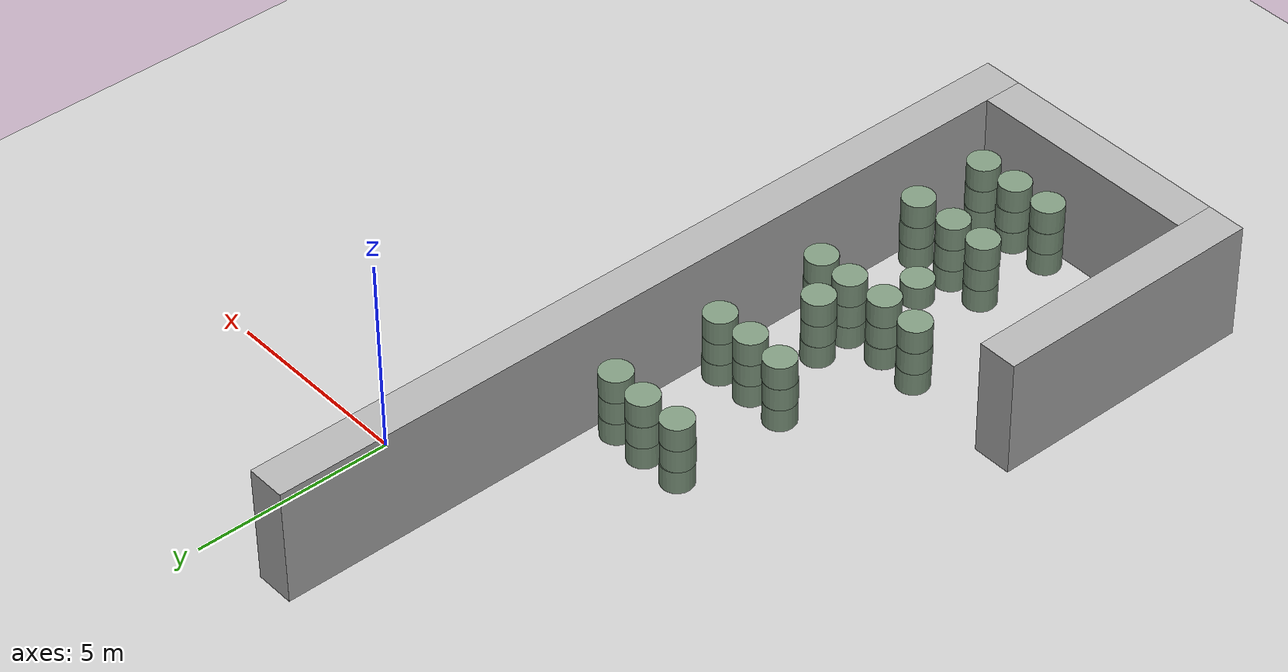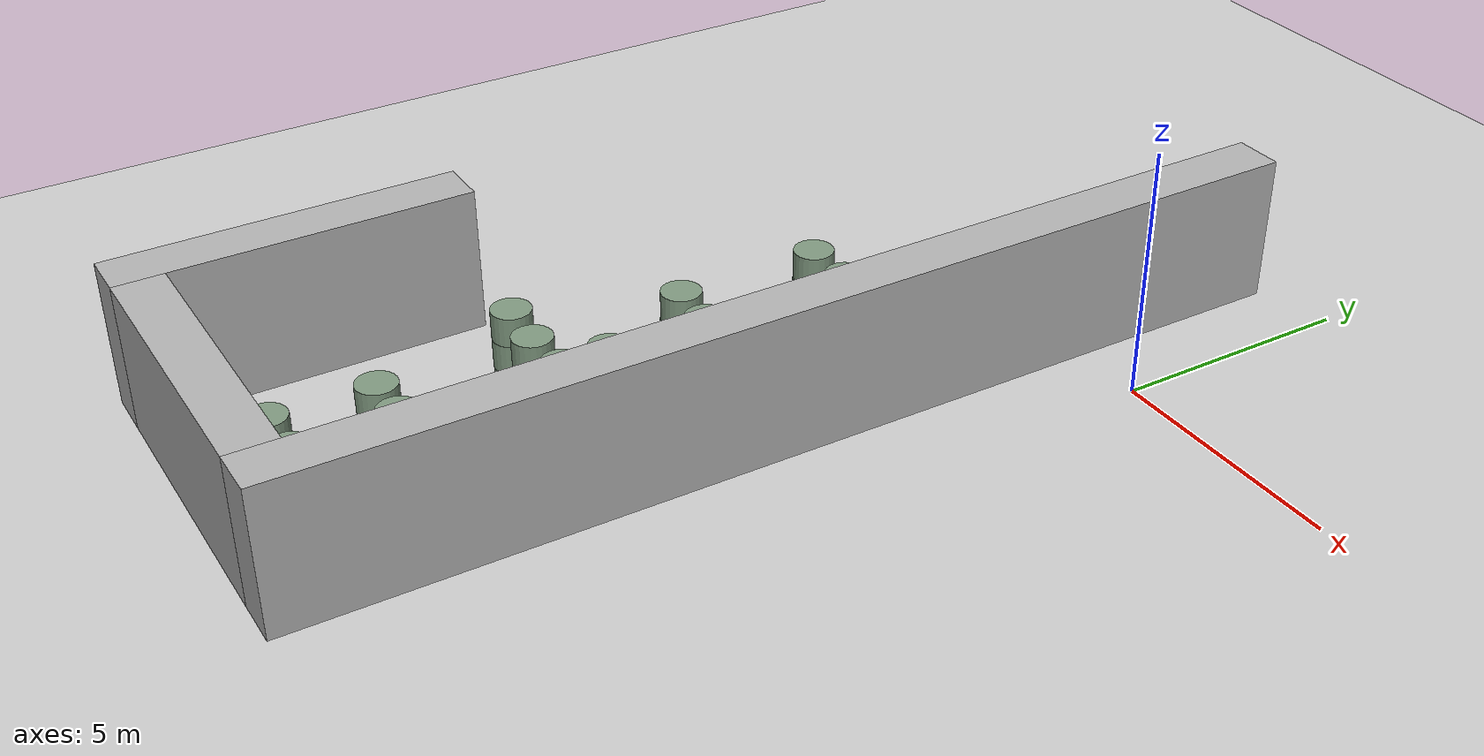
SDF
<sdf version="1.6">
 <world name="default">
  <include><uri>model://ground_plane</uri></include>
  <model name="wall_2">
   <pose>-9.0 -13.0 1.5 0 -0 0</pose>
   <static>True</static>
   <link name="link">
    <inertial>
     <mass>100</mass>
     <inertia>
      <ixx>0.166667</ixx>
      <ixy>0</ixy>
      <ixz>0</ixz>
      <iyy>0.166667</iyy>
      <iyz>0</iyz>
      <izz>0.166667</izz>
     </inertia>
    </inertial>
    <collision name="collision"><geometry><box><size>1.0 7.0 3.0</size></box></geometry></collision>
    <visual name="visual">
     <geometry><box><size>1.0 7.0 3.0</size></box></geometry>
     <material><ambient>0.7 0.7 0.7 1</ambient><diffuse>0.7 0.7 0.7 1</diffuse></material>
    </visual>
   </link>
  </model>
  <model name="wall_4">
   <pose>-2.0 -6.0 1.5 0 -0 0</pose>
   <static>True</static>
   <link name="link">
    <inertial>
     <mass>100</mass>
     <inertia>
      <ixx>0.166667</ixx>
      <ixy>0</ixy>
      <ixz>0</ixz>
      <iyy>0.166667</iyy>
      <iyz>0</iyz>
      <izz>0.166667</izz>
     </inertia>
    </inertial>
    <collision name="collision"><geometry><box><size>1.0 21.0 3.0</size></box></geometry></collision>
    <visual name="visual">
     <geometry><box><size>1.0 21.0 3.0</size></box></geometry>
     <material><ambient>0.7 0.7 0.7 1</ambient><diffuse>0.7 0.7 0.7 1</diffuse></material>
    </visual>
   </link>
  </model>
  <model name="wall_6">
   <pose>-5.5 -16.0 1.5 0 -0 0</pose>
   <static>True</static>
   <link name="link">
    <inertial>
     <mass>100</mass>
     <inertia>
      <ixx>0.166667</ixx>
      <ixy>0</ixy>
      <ixz>0</ixz>
      <iyy>0.166667</iyy>
      <iyz>0</iyz>
      <izz>0.166667</izz>
     </inertia>
    </inertial>
    <collision name="collision"><geometry><box><size>6.0 1.0 3.0</size></box></geometry></collision>
    <visual name="visual">
     <geometry><box><size>6.0 1.0 3.0</size></box></geometry>
     <material><ambient>0.7 0.7 0.7 1</ambient><diffuse>0.7 0.7 0.7 1</diffuse></material>
    </visual>
   </link>
  </model>
  <model name="unit_cylinder_47">
   <pose>-6.04018468574 -9.96377585734 0.3 0 -0 0</pose>
   <static>True</static>
   <link name="link">
    <inertial>
     <mass>100</mass>
     <inertia><ixx>0.145833</ixx><ixy>0</ixy><ixz>0</ixz><iyy>0.145833</iyy><iyz>0</iyz><izz>0.125</izz></inertia>
    </inertial>
    <collision name="collision">
     <geometry><cylinder><radius>0.4</radius><length>0.6</length></cylinder></geometry>
     <max_contacts>100</max_contacts>
    </collision>
    <visual name="visual">
     <geometry><cylinder><radius>0.4</radius><length>0.6</length></cylinder></geometry>
     <material><ambient>0.5 0.6 0.5 1</ambient><diffuse>0.5 0.6 0.5 1</diffuse></material>
    </visual>
   </link>
  </model>
  <model name="unit_cylinder_48">
   <pose>-6.05885597853 -9.96286618631 0.9 0 -0 0</pose>
   <static>True</static>
   <link name="link">
    <inertial>
     <mass>100</mass>
     <inertia><ixx>0.145833</ixx><ixy>0</ixy><ixz>0</ixz><iyy>0.145833</iyy><iyz>0</iyz><izz>0.125</izz></inertia>
    </inertial>
    <collision name="collision">
     <geometry><cylinder><radius>0.4</radius><length>0.6</length></cylinder></geometry>
     <max_contacts>100</max_contacts>
    </collision>
    <visual name="visual">
     <geometry><cylinder><radius>0.4</radius><length>0.6</length></cylinder></geometry>
     <material><ambient>0.5 0.6 0.5 1</ambient><diffuse>0.5 0.6 0.5 1</diffuse></material>
    </visual>
   </link>
  </model>
  <model name="unit_cylinder_49">
   <pose>-6.04866625079 -9.96528017133 1.5 0 -0 0</pose>
   <static>True</static>
   <link name="link">
    <inertial>
     <mass>100</mass>
     <inertia><ixx>0.145833</ixx><ixy>0</ixy><ixz>0</ixz><iyy>0.145833</iyy><iyz>0</iyz><izz>0.125</izz></inertia>
    </inertial>
    <collision name="collision">
     <geometry><cylinder><radius>0.4</radius><length>0.6</length></cylinder></geometry>
     <max_contacts>100</max_contacts>
    </collision>
    <visual name="visual">
     <geometry><cylinder><radius>0.4</radius><length>0.6</length></cylinder></geometry>
     <material><ambient>0.5 0.6 0.5 1</ambient><diffuse>0.5 0.6 0.5 1</diffuse></material>
    </visual>
   </link>
  </model>
  <model name="unit_cylinder_50">
   <pose>-5.02093100151 -15.0310494256 0.3 0 -0 0</pose>
   <static>True</static>
   <link name="link">
    <inertial>
     <mass>100</mass>
     <inertia><ixx>0.145833</ixx><ixy>0</ixy><ixz>0</ixz><iyy>0.145833</iyy><iyz>0</iyz><izz>0.125</izz></inertia>
    </inertial>
    <collision name="collision">
     <geometry><cylinder><radius>0.4</radius><length>0.6</length></cylinder></geometry>
     <max_contacts>100</max_contacts>
    </collision>
    <visual name="visual">
     <geometry><cylinder><radius>0.4</radius><length>0.6</length></cylinder></geometry>
     <material><ambient>0.5 0.6 0.5 1</ambient><diffuse>0.5 0.6 0.5 1</diffuse></material>
    </visual>
   </link>
  </model>
  <model name="unit_cylinder_51">
   <pose>-5.02213252741 -15.02975267 0.9 0 -0 0</pose>
   <static>True</static>
   <link name="link">
    <inertial>
     <mass>100</mass>
     <inertia><ixx>0.145833</ixx><ixy>0</ixy><ixz>0</ixz><iyy>0.145833</iyy><iyz>0</iyz><izz>0.125</izz></inertia>
    </inertial>
    <collision name="collision">
     <geometry><cylinder><radius>0.4</radius><length>0.6</length></cylinder></geometry>
     <max_contacts>100</max_contacts>
    </collision>
    <visual name="visual">
     <geometry><cylinder><radius>0.4</radius><length>0.6</length></cylinder></geometry>
     <material><ambient>0.5 0.6 0.5 1</ambient><diffuse>0.5 0.6 0.5 1</diffuse></material>
    </visual>
   </link>
  </model>
  <model name="unit_cylinder_52">
   <pose>-5.02042335464 -15.0371302083 1.5 0 -0 0</pose>
   <static>True</static>
   <link name="link">
    <inertial>
     <mass>100</mass>
     <inertia><ixx>0.145833</ixx><ixy>0</ixy><ixz>0</ixz><iyy>0.145833</iyy><iyz>0</iyz><izz>0.125</izz></inertia>
    </inertial>
    <collision name="collision">
     <geometry><cylinder><radius>0.4</radius><length>0.6</length></cylinder></geometry>
     <max_contacts>100</max_contacts>
    </collision>
    <visual name="visual">
     <geometry><cylinder><radius>0.4</radius><length>0.6</length></cylinder></geometry>
     <material><ambient>0.5 0.6 0.5 1</ambient><diffuse>0.5 0.6 0.5 1</diffuse></material>
    </visual>
   </link>
  </model>
  <model name="unit_cylinder_53">
   <pose>-4.97964766895 -13.035757856 0.3 0 -0 0</pose>
   <static>True</static>
   <link name="link">
    <inertial>
     <mass>100</mass>
     <inertia><ixx>0.145833</ixx><ixy>0</ixy><ixz>0</ixz><iyy>0.145833</iyy><iyz>0</iyz><izz>0.125</izz></inertia>
    </inertial>
    <collision name="collision">
     <geometry><cylinder><radius>0.4</radius><length>0.6</length></cylinder></geometry>
     <max_contacts>100</max_contacts>
    </collision>
    <visual name="visual">
     <geometry><cylinder><radius>0.4</radius><length>0.6</length></cylinder></geometry>
     <material><ambient>0.5 0.6 0.5 1</ambient><diffuse>0.5 0.6 0.5 1</diffuse></material>
    </visual>
   </link>
  </model>
  <model name="unit_cylinder_54">
   <pose>-4.97987729188 -13.0392586151 0.9 0 -0 0</pose>
   <static>True</static>
   <link name="link">
    <inertial>
     <mass>100</mass>
     <inertia><ixx>0.145833</ixx><ixy>0</ixy><ixz>0</ixz><iyy>0.145833</iyy><iyz>0</iyz><izz>0.125</izz></inertia>
    </inertial>
    <collision name="collision">
     <geometry><cylinder><radius>0.4</radius><length>0.6</length></cylinder></geometry>
     <max_contacts>100</max_contacts>
    </collision>
    <visual name="visual">
     <geometry><cylinder><radius>0.4</radius><length>0.6</length></cylinder></geometry>
     <material><ambient>0.5 0.6 0.5 1</ambient><diffuse>0.5 0.6 0.5 1</diffuse></material>
    </visual>
   </link>
  </model>
  <model name="unit_cylinder_55">
   <pose>-4.98933477123 -13.0417472599 1.5 0 -0 0</pose>
   <static>True</static>
   <link name="link">
    <inertial>
     <mass>100</mass>
     <inertia><ixx>0.145833</ixx><ixy>0</ixy><ixz>0</ixz><iyy>0.145833</iyy><iyz>0</iyz><izz>0.125</izz></inertia>
    </inertial>
    <collision name="collision">
     <geometry><cylinder><radius>0.4</radius><length>0.6</length></cylinder></geometry>
     <max_contacts>100</max_contacts>
    </collision>
    <visual name="visual">
     <geometry><cylinder><radius>0.4</radius><length>0.6</length></cylinder></geometry>
     <material><ambient>0.5 0.6 0.5 1</ambient><diffuse>0.5 0.6 0.5 1</diffuse></material>
    </visual>
   </link>
  </model>
  <model name="unit_cylinder_56">
   <pose>-4.97825052318 -10.0343738144 0.3 0 -0 0</pose>
   <static>True</static>
   <link name="link">
    <inertial>
     <mass>100</mass>
     <inertia><ixx>0.145833</ixx><ixy>0</ixy><ixz>0</ixz><iyy>0.145833</iyy><iyz>0</iyz><izz>0.125</izz></inertia>
    </inertial>
    <collision name="collision">
     <geometry><cylinder><radius>0.4</radius><length>0.6</length></cylinder></geometry>
     <max_contacts>100</max_contacts>
    </collision>
    <visual name="visual">
     <geometry><cylinder><radius>0.4</radius><length>0.6</length></cylinder></geometry>
     <material><ambient>0.5 0.6 0.5 1</ambient><diffuse>0.5 0.6 0.5 1</diffuse></material>
    </visual>
   </link>
  </model>
  <model name="unit_cylinder_57">
   <pose>-4.9749337582 -10.0489355561 0.9 0 -0 0</pose>
   <static>True</static>
   <link name="link">
    <inertial>
     <mass>100</mass>
     <inertia><ixx>0.145833</ixx><ixy>0</ixy><ixz>0</ixz><iyy>0.145833</iyy><iyz>0</iyz><izz>0.125</izz></inertia>
    </inertial>
    <collision name="collision">
     <geometry><cylinder><radius>0.4</radius><length>0.6</length></cylinder></geometry>
     <max_contacts>100</max_contacts>
    </collision>
    <visual name="visual">
     <geometry><cylinder><radius>0.4</radius><length>0.6</length></cylinder></geometry>
     <material><ambient>0.5 0.6 0.5 1</ambient><diffuse>0.5 0.6 0.5 1</diffuse></material>
    </visual>
   </link>
  </model>
  <model name="unit_cylinder_58">
   <pose>-4.98019111596 -10.0449038137 1.5 0 -0 0</pose>
   <static>True</static>
   <link name="link">
    <inertial>
     <mass>100</mass>
     <inertia><ixx>0.145833</ixx><ixy>0</ixy><ixz>0</ixz><iyy>0.145833</iyy><iyz>0</iyz><izz>0.125</izz></inertia>
    </inertial>
    <collision name="collision">
     <geometry><cylinder><radius>0.4</radius><length>0.6</length></cylinder></geometry>
     <max_contacts>100</max_contacts>
    </collision>
    <visual name="visual">
     <geometry><cylinder><radius>0.4</radius><length>0.6</length></cylinder></geometry>
     <material><ambient>0.5 0.6 0.5 1</ambient><diffuse>0.5 0.6 0.5 1</diffuse></material>
    </visual>
   </link>
  </model>
  <model name="unit_cylinder_59">
   <pose>-4.99897613698 -6.96157563519 0.3 0 -0 0</pose>
   <static>True</static>
   <link name="link">
    <inertial>
     <mass>100</mass>
     <inertia><ixx>0.145833</ixx><ixy>0</ixy><ixz>0</ixz><iyy>0.145833</iyy><iyz>0</iyz><izz>0.125</izz></inertia>
    </inertial>
    <collision name="collision">
     <geometry><cylinder><radius>0.4</radius><length>0.6</length></cylinder></geometry>
     <max_contacts>100</max_contacts>
    </collision>
    <visual name="visual">
     <geometry><cylinder><radius>0.4</radius><length>0.6</length></cylinder></geometry>
     <material><ambient>0.5 0.6 0.5 1</ambient><diffuse>0.5 0.6 0.5 1</diffuse></material>
    </visual>
   </link>
  </model>
  <model name="unit_cylinder_60">
   <pose>-5.00235431533 -6.96569296985 0.9 0 -0 0</pose>
   <static>True</static>
   <link name="link">
    <inertial>
     <mass>100</mass>
     <inertia><ixx>0.145833</ixx><ixy>0</ixy><ixz>0</ixz><iyy>0.145833</iyy><iyz>0</iyz><izz>0.125</izz></inertia>
    </inertial>
    <collision name="collision">
     <geometry><cylinder><radius>0.4</radius><length>0.6</length></cylinder></geometry>
     <max_contacts>100</max_contacts>
    </collision>
    <visual name="visual">
     <geometry><cylinder><radius>0.4</radius><length>0.6</length></cylinder></geometry>
     <material><ambient>0.5 0.6 0.5 1</ambient><diffuse>0.5 0.6 0.5 1</diffuse></material>
    </visual>
   </link>
  </model>
  <model name="unit_cylinder_61">
   <pose>-4.99132569543 -6.95472030622 1.5 0 -0 0</pose>
   <static>True</static>
   <link name="link">
    <inertial>
     <mass>100</mass>
     <inertia><ixx>0.145833</ixx><ixy>0</ixy><ixz>0</ixz><iyy>0.145833</iyy><iyz>0</iyz><izz>0.125</izz></inertia>
    </inertial>
    <collision name="collision">
     <geometry><cylinder><radius>0.4</radius><length>0.6</length></cylinder></geometry>
     <max_contacts>100</max_contacts>
    </collision>
    <visual name="visual">
     <geometry><cylinder><radius>0.4</radius><length>0.6</length></cylinder></geometry>
     <material><ambient>0.5 0.6 0.5 1</ambient><diffuse>0.5 0.6 0.5 1</diffuse></material>
    </visual>
   </link>
  </model>
  <model name="unit_cylinder_62">
   <pose>-5.02978008958 -3.98355117172 0.3 0 -0 0</pose>
   <static>True</static>
   <link name="link">
    <inertial>
     <mass>100</mass>
     <inertia><ixx>0.145833</ixx><ixy>0</ixy><ixz>0</ixz><iyy>0.145833</iyy><iyz>0</iyz><izz>0.125</izz></inertia>
    </inertial>
    <collision name="collision">
     <geometry><cylinder><radius>0.4</radius><length>0.6</length></cylinder></geometry>
     <max_contacts>100</max_contacts>
    </collision>
    <visual name="visual">
     <geometry><cylinder><radius>0.4</radius><length>0.6</length></cylinder></geometry>
     <material><ambient>0.5 0.6 0.5 1</ambient><diffuse>0.5 0.6 0.5 1</diffuse></material>
    </visual>
   </link>
  </model>
  <model name="unit_cylinder_63">
   <pose>-5.03525330247 -3.99738400435 0.9 0 -0 0</pose>
   <static>True</static>
   <link name="link">
    <inertial>
     <mass>100</mass>
     <inertia><ixx>0.145833</ixx><ixy>0</ixy><ixz>0</ixz><iyy>0.145833</iyy><iyz>0</iyz><izz>0.125</izz></inertia>
    </inertial>
    <collision name="collision">
     <geometry><cylinder><radius>0.4</radius><length>0.6</length></cylinder></geometry>
     <max_contacts>100</max_contacts>
    </collision>
    <visual name="visual">
     <geometry><cylinder><radius>0.4</radius><length>0.6</length></cylinder></geometry>
     <material><ambient>0.5 0.6 0.5 1</ambient><diffuse>0.5 0.6 0.5 1</diffuse></material>
    </visual>
   </link>
  </model>
  <model name="unit_cylinder_64">
   <pose>-5.02837142492 -3.99262679112 1.5 0 -0 0</pose>
   <static>True</static>
   <link name="link">
    <inertial>
     <mass>100</mass>
     <inertia><ixx>0.145833</ixx><ixy>0</ixy><ixz>0</ixz><iyy>0.145833</iyy><iyz>0</iyz><izz>0.125</izz></inertia>
    </inertial>
    <collision name="collision">
     <geometry><cylinder><radius>0.4</radius><length>0.6</length></cylinder></geometry>
     <max_contacts>100</max_contacts>
    </collision>
    <visual name="visual">
     <geometry><cylinder><radius>0.4</radius><length>0.6</length></cylinder></geometry>
     <material><ambient>0.5 0.6 0.5 1</ambient><diffuse>0.5 0.6 0.5 1</diffuse></material>
    </visual>
   </link>
  </model>
  <model name="unit_cylinder_92">
   <pose>-3.98473463308 -15.0203537264 0.3 0 -0 0</pose>
   <static>True</static>
   <link name="link">
    <inertial>
     <mass>100</mass>
     <inertia><ixx>0.145833</ixx><ixy>0</ixy><ixz>0</ixz><iyy>0.145833</iyy><iyz>0</iyz><izz>0.125</izz></inertia>
    </inertial>
    <collision name="collision">
     <geometry><cylinder><radius>0.4</radius><length>0.6</length></cylinder></geometry>
     <max_contacts>100</max_contacts>
    </collision>
    <visual name="visual">
     <geometry><cylinder><radius>0.4</radius><length>0.6</length></cylinder></geometry>
     <material><ambient>0.5 0.6 0.5 1</ambient><diffuse>0.5 0.6 0.5 1</diffuse></material>
    </visual>
   </link>
  </model>
  <model name="unit_cylinder_93">
   <pose>-3.96873581978 -15.0115278581 0.9 0 -0 0</pose>
   <static>True</static>
   <link name="link">
    <inertial>
     <mass>100</mass>
     <inertia><ixx>0.145833</ixx><ixy>0</ixy><ixz>0</ixz><iyy>0.145833</iyy><iyz>0</iyz><izz>0.125</izz></inertia>
    </inertial>
    <collision name="collision">
     <geometry><cylinder><radius>0.4</radius><length>0.6</length></cylinder></geometry>
     <max_contacts>100</max_contacts>
    </collision>
    <visual name="visual">
     <geometry><cylinder><radius>0.4</radius><length>0.6</length></cylinder></geometry>
     <material><ambient>0.5 0.6 0.5 1</ambient><diffuse>0.5 0.6 0.5 1</diffuse></material>
    </visual>
   </link>
  </model>
  <model name="unit_cylinder_94">
   <pose>-3.9824042208 -15.0200942727 1.5 0 -0 0</pose>
   <static>True</static>
   <link name="link">
    <inertial>
     <mass>100</mass>
     <inertia><ixx>0.145833</ixx><ixy>0</ixy><ixz>0</ixz><iyy>0.145833</iyy><iyz>0</iyz><izz>0.125</izz></inertia>
    </inertial>
    <collision name="collision">
     <geometry><cylinder><radius>0.4</radius><length>0.6</length></cylinder></geometry>
     <max_contacts>100</max_contacts>
    </collision>
    <visual name="visual">
     <geometry><cylinder><radius>0.4</radius><length>0.6</length></cylinder></geometry>
     <material><ambient>0.5 0.6 0.5 1</ambient><diffuse>0.5 0.6 0.5 1</diffuse></material>
    </visual>
   </link>
  </model>
  <model name="unit_cylinder_95">
   <pose>-4.03329316208 -13.0267179775 0.3 0 -0 0</pose>
   <static>True</static>
   <link name="link">
    <inertial>
     <mass>100</mass>
     <inertia><ixx>0.145833</ixx><ixy>0</ixy><ixz>0</ixz><iyy>0.145833</iyy><iyz>0</iyz><izz>0.125</izz></inertia>
    </inertial>
    <collision name="collision">
     <geometry><cylinder><radius>0.4</radius><length>0.6</length></cylinder></geometry>
     <max_contacts>100</max_contacts>
    </collision>
    <visual name="visual">
     <geometry><cylinder><radius>0.4</radius><length>0.6</length></cylinder></geometry>
     <material><ambient>0.5 0.6 0.5 1</ambient><diffuse>0.5 0.6 0.5 1</diffuse></material>
    </visual>
   </link>
  </model>
  <model name="unit_cylinder_96">
   <pose>-4.04989792798 -13.0279202242 0.9 0 -0 0</pose>
   <static>True</static>
   <link name="link">
    <inertial>
     <mass>100</mass>
     <inertia><ixx>0.145833</ixx><ixy>0</ixy><ixz>0</ixz><iyy>0.145833</iyy><iyz>0</iyz><izz>0.125</izz></inertia>
    </inertial>
    <collision name="collision">
     <geometry><cylinder><radius>0.4</radius><length>0.6</length></cylinder></geometry>
     <max_contacts>100</max_contacts>
    </collision>
    <visual name="visual">
     <geometry><cylinder><radius>0.4</radius><length>0.6</length></cylinder></geometry>
     <material><ambient>0.5 0.6 0.5 1</ambient><diffuse>0.5 0.6 0.5 1</diffuse></material>
    </visual>
   </link>
  </model>
  <model name="unit_cylinder_97">
   <pose>-4.04571168082 -13.0320283141 1.5 0 -0 0</pose>
   <static>True</static>
   <link name="link">
    <inertial>
     <mass>100</mass>
     <inertia><ixx>0.145833</ixx><ixy>0</ixy><ixz>0</ixz><iyy>0.145833</iyy><iyz>0</iyz><izz>0.125</izz></inertia>
    </inertial>
    <collision name="collision">
     <geometry><cylinder><radius>0.4</radius><length>0.6</length></cylinder></geometry>
     <max_contacts>100</max_contacts>
    </collision>
    <visual name="visual">
     <geometry><cylinder><radius>0.4</radius><length>0.6</length></cylinder></geometry>
     <material><ambient>0.5 0.6 0.5 1</ambient><diffuse>0.5 0.6 0.5 1</diffuse></material>
    </visual>
   </link>
  </model>
  <model name="unit_cylinder_98">
   <pose>-3.98046642279 -12.0398564666 0.3 0 -0 0</pose>
   <static>True</static>
   <link name="link">
    <inertial>
     <mass>100</mass>
     <inertia><ixx>0.145833</ixx><ixy>0</ixy><ixz>0</ixz><iyy>0.145833</iyy><iyz>0</iyz><izz>0.125</izz></inertia>
    </inertial>
    <collision name="collision">
     <geometry><cylinder><radius>0.4</radius><length>0.6</length></cylinder></geometry>
     <max_contacts>100</max_contacts>
    </collision>
    <visual name="visual">
     <geometry><cylinder><radius>0.4</radius><length>0.6</length></cylinder></geometry>
     <material><ambient>0.5 0.6 0.5 1</ambient><diffuse>0.5 0.6 0.5 1</diffuse></material>
    </visual>
   </link>
  </model>
  <model name="unit_cylinder_99">
   <pose>-3.94529130245 -9.95554350675 0.3 0 -0 0</pose>
   <static>True</static>
   <link name="link">
    <inertial>
     <mass>100</mass>
     <inertia><ixx>0.145833</ixx><ixy>0</ixy><ixz>0</ixz><iyy>0.145833</iyy><iyz>0</iyz><izz>0.125</izz></inertia>
    </inertial>
    <collision name="collision">
     <geometry><cylinder><radius>0.4</radius><length>0.6</length></cylinder></geometry>
     <max_contacts>100</max_contacts>
    </collision>
    <visual name="visual">
     <geometry><cylinder><radius>0.4</radius><length>0.6</length></cylinder></geometry>
     <material><ambient>0.5 0.6 0.5 1</ambient><diffuse>0.5 0.6 0.5 1</diffuse></material>
    </visual>
   </link>
  </model>
  <model name="unit_cylinder_100">
   <pose>-3.95213730991 -9.95827642433 0.9 0 -0 0</pose>
   <static>True</static>
   <link name="link">
    <inertial>
     <mass>100</mass>
     <inertia><ixx>0.145833</ixx><ixy>0</ixy><ixz>0</ixz><iyy>0.145833</iyy><iyz>0</iyz><izz>0.125</izz></inertia>
    </inertial>
    <collision name="collision">
     <geometry><cylinder><radius>0.4</radius><length>0.6</length></cylinder></geometry>
     <max_contacts>100</max_contacts>
    </collision>
    <visual name="visual">
     <geometry><cylinder><radius>0.4</radius><length>0.6</length></cylinder></geometry>
     <material><ambient>0.5 0.6 0.5 1</ambient><diffuse>0.5 0.6 0.5 1</diffuse></material>
    </visual>
   </link>
  </model>
  <model name="unit_cylinder_101">
   <pose>-3.95659095095 -9.95736911519 1.5 0 -0 0</pose>
   <static>True</static>
   <link name="link">
    <inertial>
     <mass>100</mass>
     <inertia><ixx>0.145833</ixx><ixy>0</ixy><ixz>0</ixz><iyy>0.145833</iyy><iyz>0</iyz><izz>0.125</izz></inertia>
    </inertial>
    <collision name="collision">
     <geometry><cylinder><radius>0.4</radius><length>0.6</length></cylinder></geometry>
     <max_contacts>100</max_contacts>
    </collision>
    <visual name="visual">
     <geometry><cylinder><radius>0.4</radius><length>0.6</length></cylinder></geometry>
     <material><ambient>0.5 0.6 0.5 1</ambient><diffuse>0.5 0.6 0.5 1</diffuse></material>
    </visual>
   </link>
  </model>
  <model name="unit_cylinder_102">
   <pose>-3.98836414024 -8.99450868607 0.3 0 -0 0</pose>
   <static>True</static>
   <link name="link">
    <inertial>
     <mass>100</mass>
     <inertia><ixx>0.145833</ixx><ixy>0</ixy><ixz>0</ixz><iyy>0.145833</iyy><iyz>0</iyz><izz>0.125</izz></inertia>
    </inertial>
    <collision name="collision">
     <geometry><cylinder><radius>0.4</radius><length>0.6</length></cylinder></geometry>
     <max_contacts>100</max_contacts>
    </collision>
    <visual name="visual">
     <geometry><cylinder><radius>0.4</radius><length>0.6</length></cylinder></geometry>
     <material><ambient>0.5 0.6 0.5 1</ambient><diffuse>0.5 0.6 0.5 1</diffuse></material>
    </visual>
   </link>
  </model>
  <model name="unit_cylinder_103">
   <pose>-3.99665045891 -9.00436230256 0.9 0 -0 0</pose>
   <static>True</static>
   <link name="link">
    <inertial>
     <mass>100</mass>
     <inertia><ixx>0.145833</ixx><ixy>0</ixy><ixz>0</ixz><iyy>0.145833</iyy><iyz>0</iyz><izz>0.125</izz></inertia>
    </inertial>
    <collision name="collision">
     <geometry><cylinder><radius>0.4</radius><length>0.6</length></cylinder></geometry>
     <max_contacts>100</max_contacts>
    </collision>
    <visual name="visual">
     <geometry><cylinder><radius>0.4</radius><length>0.6</length></cylinder></geometry>
     <material><ambient>0.5 0.6 0.5 1</ambient><diffuse>0.5 0.6 0.5 1</diffuse></material>
    </visual>
   </link>
  </model>
  <model name="unit_cylinder_104">
   <pose>-3.99720354318 -8.99514810546 1.5 0 -0 0</pose>
   <static>True</static>
   <link name="link">
    <inertial>
     <mass>100</mass>
     <inertia><ixx>0.145833</ixx><ixy>0</ixy><ixz>0</ixz><iyy>0.145833</iyy><iyz>0</iyz><izz>0.125</izz></inertia>
    </inertial>
    <collision name="collision">
     <geometry><cylinder><radius>0.4</radius><length>0.6</length></cylinder></geometry>
     <max_contacts>100</max_contacts>
    </collision>
    <visual name="visual">
     <geometry><cylinder><radius>0.4</radius><length>0.6</length></cylinder></geometry>
     <material><ambient>0.5 0.6 0.5 1</ambient><diffuse>0.5 0.6 0.5 1</diffuse></material>
    </visual>
   </link>
  </model>
  <model name="unit_cylinder_105">
   <pose>-3.98020629734 -7.00907784364 0.3 0 -0 0</pose>
   <static>True</static>
   <link name="link">
    <inertial>
     <mass>100</mass>
     <inertia><ixx>0.145833</ixx><ixy>0</ixy><ixz>0</ixz><iyy>0.145833</iyy><iyz>0</iyz><izz>0.125</izz></inertia>
    </inertial>
    <collision name="collision">
     <geometry><cylinder><radius>0.4</radius><length>0.6</length></cylinder></geometry>
     <max_contacts>100</max_contacts>
    </collision>
    <visual name="visual">
     <geometry><cylinder><radius>0.4</radius><length>0.6</length></cylinder></geometry>
     <material><ambient>0.5 0.6 0.5 1</ambient><diffuse>0.5 0.6 0.5 1</diffuse></material>
    </visual>
   </link>
  </model>
  <model name="unit_cylinder_106">
   <pose>-3.98865030458 -7.01535228386 0.9 0 -0 0</pose>
   <static>True</static>
   <link name="link">
    <inertial>
     <mass>100</mass>
     <inertia><ixx>0.145833</ixx><ixy>0</ixy><ixz>0</ixz><iyy>0.145833</iyy><iyz>0</iyz><izz>0.125</izz></inertia>
    </inertial>
    <collision name="collision">
     <geometry><cylinder><radius>0.4</radius><length>0.6</length></cylinder></geometry>
     <max_contacts>100</max_contacts>
    </collision>
    <visual name="visual">
     <geometry><cylinder><radius>0.4</radius><length>0.6</length></cylinder></geometry>
     <material><ambient>0.5 0.6 0.5 1</ambient><diffuse>0.5 0.6 0.5 1</diffuse></material>
    </visual>
   </link>
  </model>
  <model name="unit_cylinder_107">
   <pose>-3.98559278036 -6.99922155435 1.5 0 -0 0</pose>
   <static>True</static>
   <link name="link">
    <inertial>
     <mass>100</mass>
     <inertia><ixx>0.145833</ixx><ixy>0</ixy><ixz>0</ixz><iyy>0.145833</iyy><iyz>0</iyz><izz>0.125</izz></inertia>
    </inertial>
    <collision name="collision">
     <geometry><cylinder><radius>0.4</radius><length>0.6</length></cylinder></geometry>
     <max_contacts>100</max_contacts>
    </collision>
    <visual name="visual">
     <geometry><cylinder><radius>0.4</radius><length>0.6</length></cylinder></geometry>
     <material><ambient>0.5 0.6 0.5 1</ambient><diffuse>0.5 0.6 0.5 1</diffuse></material>
    </visual>
   </link>
  </model>
  <model name="unit_cylinder_108">
   <pose>-3.96497330996 -3.95271090555 0.3 0 -0 0</pose>
   <static>True</static>
   <link name="link">
    <inertial>
     <mass>100</mass>
     <inertia><ixx>0.145833</ixx><ixy>0</ixy><ixz>0</ixz><iyy>0.145833</iyy><iyz>0</iyz><izz>0.125</izz></inertia>
    </inertial>
    <collision name="collision">
     <geometry><cylinder><radius>0.4</radius><length>0.6</length></cylinder></geometry>
     <max_contacts>100</max_contacts>
    </collision>
    <visual name="visual">
     <geometry><cylinder><radius>0.4</radius><length>0.6</length></cylinder></geometry>
     <material><ambient>0.5 0.6 0.5 1</ambient><diffuse>0.5 0.6 0.5 1</diffuse></material>
    </visual>
   </link>
  </model>
  <model name="unit_cylinder_109">
   <pose>-3.97912323475 -3.94186594488 0.9 0 -0 0</pose>
   <static>True</static>
   <link name="link">
    <inertial>
     <mass>100</mass>
     <inertia><ixx>0.145833</ixx><ixy>0</ixy><ixz>0</ixz><iyy>0.145833</iyy><iyz>0</iyz><izz>0.125</izz></inertia>
    </inertial>
    <collision name="collision">
     <geometry><cylinder><radius>0.4</radius><length>0.6</length></cylinder></geometry>
     <max_contacts>100</max_contacts>
    </collision>
    <visual name="visual">
     <geometry><cylinder><radius>0.4</radius><length>0.6</length></cylinder></geometry>
     <material><ambient>0.5 0.6 0.5 1</ambient><diffuse>0.5 0.6 0.5 1</diffuse></material>
    </visual>
   </link>
  </model>
  <model name="unit_cylinder_110">
   <pose>-3.96834921371 -3.94717120883 1.5 0 -0 0</pose>
   <static>True</static>
   <link name="link">
    <inertial>
     <mass>100</mass>
     <inertia><ixx>0.145833</ixx><ixy>0</ixy><ixz>0</ixz><iyy>0.145833</iyy><iyz>0</iyz><izz>0.125</izz></inertia>
    </inertial>
    <collision name="collision">
     <geometry><cylinder><radius>0.4</radius><length>0.6</length></cylinder></geometry>
     <max_contacts>100</max_contacts>
    </collision>
    <visual name="visual">
     <geometry><cylinder><radius>0.4</radius><length>0.6</length></cylinder></geometry>
     <material><ambient>0.5 0.6 0.5 1</ambient><diffuse>0.5 0.6 0.5 1</diffuse></material>
    </visual>
   </link>
  </model>
  <model name="unit_cylinder_138">
   <pose>-2.98427812926 -15.0103886388 0.3 0 -0 0</pose>
   <static>True</static>
   <link name="link">
    <inertial>
     <mass>100</mass>
     <inertia><ixx>0.145833</ixx><ixy>0</ixy><ixz>0</ixz><iyy>0.145833</iyy><iyz>0</iyz><izz>0.125</izz></inertia>
    </inertial>
    <collision name="collision">
     <geometry><cylinder><radius>0.4</radius><length>0.6</length></cylinder></geometry>
     <max_contacts>100</max_contacts>
    </collision>
    <visual name="visual">
     <geometry><cylinder><radius>0.4</radius><length>0.6</length></cylinder></geometry>
     <material><ambient>0.5 0.6 0.5 1</ambient><diffuse>0.5 0.6 0.5 1</diffuse></material>
    </visual>
   </link>
  </model>
  <model name="unit_cylinder_139">
   <pose>-2.97753765289 -15.0022999402 0.9 0 -0 0</pose>
   <static>True</static>
   <link name="link">
    <inertial>
     <mass>100</mass>
     <inertia><ixx>0.145833</ixx><ixy>0</ixy><ixz>0</ixz><iyy>0.145833</iyy><iyz>0</iyz><izz>0.125</izz></inertia>
    </inertial>
    <collision name="collision">
     <geometry><cylinder><radius>0.4</radius><length>0.6</length></cylinder></geometry>
     <max_contacts>100</max_contacts>
    </collision>
    <visual name="visual">
     <geometry><cylinder><radius>0.4</radius><length>0.6</length></cylinder></geometry>
     <material><ambient>0.5 0.6 0.5 1</ambient><diffuse>0.5 0.6 0.5 1</diffuse></material>
    </visual>
   </link>
  </model>
  <model name="unit_cylinder_140">
   <pose>-2.97539694145 -15.0121967319 1.5 0 -0 0</pose>
   <static>True</static>
   <link name="link">
    <inertial>
     <mass>100</mass>
     <inertia><ixx>0.145833</ixx><ixy>0</ixy><ixz>0</ixz><iyy>0.145833</iyy><iyz>0</iyz><izz>0.125</izz></inertia>
    </inertial>
    <collision name="collision">
     <geometry><cylinder><radius>0.4</radius><length>0.6</length></cylinder></geometry>
     <max_contacts>100</max_contacts>
    </collision>
    <visual name="visual">
     <geometry><cylinder><radius>0.4</radius><length>0.6</length></cylinder></geometry>
     <material><ambient>0.5 0.6 0.5 1</ambient><diffuse>0.5 0.6 0.5 1</diffuse></material>
    </visual>
   </link>
  </model>
  <model name="unit_cylinder_141">
   <pose>-2.94923785309 -12.9856848447 0.3 0 -0 0</pose>
   <static>True</static>
   <link name="link">
    <inertial>
     <mass>100</mass>
     <inertia><ixx>0.145833</ixx><ixy>0</ixy><ixz>0</ixz><iyy>0.145833</iyy><iyz>0</iyz><izz>0.125</izz></inertia>
    </inertial>
    <collision name="collision">
     <geometry><cylinder><radius>0.4</radius><length>0.6</length></cylinder></geometry>
     <max_contacts>100</max_contacts>
    </collision>
    <visual name="visual">
     <geometry><cylinder><radius>0.4</radius><length>0.6</length></cylinder></geometry>
     <material><ambient>0.5 0.6 0.5 1</ambient><diffuse>0.5 0.6 0.5 1</diffuse></material>
    </visual>
   </link>
  </model>
  <model name="unit_cylinder_142">
   <pose>-2.94133011979 -12.9843073171 0.9 0 -0 0</pose>
   <static>True</static>
   <link name="link">
    <inertial>
     <mass>100</mass>
     <inertia><ixx>0.145833</ixx><ixy>0</ixy><ixz>0</ixz><iyy>0.145833</iyy><iyz>0</iyz><izz>0.125</izz></inertia>
    </inertial>
    <collision name="collision">
     <geometry><cylinder><radius>0.4</radius><length>0.6</length></cylinder></geometry>
     <max_contacts>100</max_contacts>
    </collision>
    <visual name="visual">
     <geometry><cylinder><radius>0.4</radius><length>0.6</length></cylinder></geometry>
     <material><ambient>0.5 0.6 0.5 1</ambient><diffuse>0.5 0.6 0.5 1</diffuse></material>
    </visual>
   </link>
  </model>
  <model name="unit_cylinder_143">
   <pose>-2.95139971444 -12.9934995161 1.5 0 -0 0</pose>
   <static>True</static>
   <link name="link">
    <inertial>
     <mass>100</mass>
     <inertia><ixx>0.145833</ixx><ixy>0</ixy><ixz>0</ixz><iyy>0.145833</iyy><iyz>0</iyz><izz>0.125</izz></inertia>
    </inertial>
    <collision name="collision">
     <geometry><cylinder><radius>0.4</radius><length>0.6</length></cylinder></geometry>
     <max_contacts>100</max_contacts>
    </collision>
    <visual name="visual">
     <geometry><cylinder><radius>0.4</radius><length>0.6</length></cylinder></geometry>
     <material><ambient>0.5 0.6 0.5 1</ambient><diffuse>0.5 0.6 0.5 1</diffuse></material>
    </visual>
   </link>
  </model>
  <model name="unit_cylinder_144">
   <pose>-3.0299427433 -9.97360929813 0.3 0 -0 0</pose>
   <static>True</static>
   <link name="link">
    <inertial>
     <mass>100</mass>
     <inertia><ixx>0.145833</ixx><ixy>0</ixy><ixz>0</ixz><iyy>0.145833</iyy><iyz>0</iyz><izz>0.125</izz></inertia>
    </inertial>
    <collision name="collision">
     <geometry><cylinder><radius>0.4</radius><length>0.6</length></cylinder></geometry>
     <max_contacts>100</max_contacts>
    </collision>
    <visual name="visual">
     <geometry><cylinder><radius>0.4</radius><length>0.6</length></cylinder></geometry>
     <material><ambient>0.5 0.6 0.5 1</ambient><diffuse>0.5 0.6 0.5 1</diffuse></material>
    </visual>
   </link>
  </model>
  <model name="unit_cylinder_145">
   <pose>-3.01935274324 -9.96578415017 0.9 0 -0 0</pose>
   <static>True</static>
   <link name="link">
    <inertial>
     <mass>100</mass>
     <inertia><ixx>0.145833</ixx><ixy>0</ixy><ixz>0</ixz><iyy>0.145833</iyy><iyz>0</iyz><izz>0.125</izz></inertia>
    </inertial>
    <collision name="collision">
     <geometry><cylinder><radius>0.4</radius><length>0.6</length></cylinder></geometry>
     <max_contacts>100</max_contacts>
    </collision>
    <visual name="visual">
     <geometry><cylinder><radius>0.4</radius><length>0.6</length></cylinder></geometry>
     <material><ambient>0.5 0.6 0.5 1</ambient><diffuse>0.5 0.6 0.5 1</diffuse></material>
    </visual>
   </link>
  </model>
  <model name="unit_cylinder_146">
   <pose>-3.01923273849 -9.97233862332 1.5 0 -0 0</pose>
   <static>True</static>
   <link name="link">
    <inertial>
     <mass>100</mass>
     <inertia><ixx>0.145833</ixx><ixy>0</ixy><ixz>0</ixz><iyy>0.145833</iyy><iyz>0</iyz><izz>0.125</izz></inertia>
    </inertial>
    <collision name="collision">
     <geometry><cylinder><radius>0.4</radius><length>0.6</length></cylinder></geometry>
     <max_contacts>100</max_contacts>
    </collision>
    <visual name="visual">
     <geometry><cylinder><radius>0.4</radius><length>0.6</length></cylinder></geometry>
     <material><ambient>0.5 0.6 0.5 1</ambient><diffuse>0.5 0.6 0.5 1</diffuse></material>
    </visual>
   </link>
  </model>
  <model name="unit_cylinder_147">
   <pose>-3.01122967707 -6.96988661047 0.3 0 -0 0</pose>
   <static>True</static>
   <link name="link">
    <inertial>
     <mass>100</mass>
     <inertia><ixx>0.145833</ixx><ixy>0</ixy><ixz>0</ixz><iyy>0.145833</iyy><iyz>0</iyz><izz>0.125</izz></inertia>
    </inertial>
    <collision name="collision">
     <geometry><cylinder><radius>0.4</radius><length>0.6</length></cylinder></geometry>
     <max_contacts>100</max_contacts>
    </collision>
    <visual name="visual">
     <geometry><cylinder><radius>0.4</radius><length>0.6</length></cylinder></geometry>
     <material><ambient>0.5 0.6 0.5 1</ambient><diffuse>0.5 0.6 0.5 1</diffuse></material>
    </visual>
   </link>
  </model>
  <model name="unit_cylinder_148">
   <pose>-3.01298270023 -6.97673914827 0.9 0 -0 0</pose>
   <static>True</static>
   <link name="link">
    <inertial>
     <mass>100</mass>
     <inertia><ixx>0.145833</ixx><ixy>0</ixy><ixz>0</ixz><iyy>0.145833</iyy><iyz>0</iyz><izz>0.125</izz></inertia>
    </inertial>
    <collision name="collision">
     <geometry><cylinder><radius>0.4</radius><length>0.6</length></cylinder></geometry>
     <max_contacts>100</max_contacts>
    </collision>
    <visual name="visual">
     <geometry><cylinder><radius>0.4</radius><length>0.6</length></cylinder></geometry>
     <material><ambient>0.5 0.6 0.5 1</ambient><diffuse>0.5 0.6 0.5 1</diffuse></material>
    </visual>
   </link>
  </model>
  <model name="unit_cylinder_149">
   <pose>-3.02434608028 -6.97219205031 1.5 0 -0 0</pose>
   <static>True</static>
   <link name="link">
    <inertial>
     <mass>100</mass>
     <inertia><ixx>0.145833</ixx><ixy>0</ixy><ixz>0</ixz><iyy>0.145833</iyy><iyz>0</iyz><izz>0.125</izz></inertia>
    </inertial>
    <collision name="collision">
     <geometry><cylinder><radius>0.4</radius><length>0.6</length></cylinder></geometry>
     <max_contacts>100</max_contacts>
    </collision>
    <visual name="visual">
     <geometry><cylinder><radius>0.4</radius><length>0.6</length></cylinder></geometry>
     <material><ambient>0.5 0.6 0.5 1</ambient><diffuse>0.5 0.6 0.5 1</diffuse></material>
    </visual>
   </link>
  </model>
  <model name="unit_cylinder_150">
   <pose>-2.99603782789 -4.01042325601 0.3 0 -0 0</pose>
   <static>True</static>
   <link name="link">
    <inertial>
     <mass>100</mass>
     <inertia><ixx>0.145833</ixx><ixy>0</ixy><ixz>0</ixz><iyy>0.145833</iyy><iyz>0</iyz><izz>0.125</izz></inertia>
    </inertial>
    <collision name="collision">
     <geometry><cylinder><radius>0.4</radius><length>0.6</length></cylinder></geometry>
     <max_contacts>100</max_contacts>
    </collision>
    <visual name="visual">
     <geometry><cylinder><radius>0.4</radius><length>0.6</length></cylinder></geometry>
     <material><ambient>0.5 0.6 0.5 1</ambient><diffuse>0.5 0.6 0.5 1</diffuse></material>
    </visual>
   </link>
  </model>
  <model name="unit_cylinder_151">
   <pose>-3.00104104618 -4.01463084173 0.9 0 -0 0</pose>
   <static>True</static>
   <link name="link">
    <inertial>
     <mass>100</mass>
     <inertia><ixx>0.145833</ixx><ixy>0</ixy><ixz>0</ixz><iyy>0.145833</iyy><iyz>0</iyz><izz>0.125</izz></inertia>
    </inertial>
    <collision name="collision">
     <geometry><cylinder><radius>0.4</radius><length>0.6</length></cylinder></geometry>
     <max_contacts>100</max_contacts>
    </collision>
    <visual name="visual">
     <geometry><cylinder><radius>0.4</radius><length>0.6</length></cylinder></geometry>
     <material><ambient>0.5 0.6 0.5 1</ambient><diffuse>0.5 0.6 0.5 1</diffuse></material>
    </visual>
   </link>
  </model>
  <model name="unit_cylinder_152">
   <pose>-3.00192086338 -4.01089520932 1.5 0 -0 0</pose>
   <static>True</static>
   <link name="link">
    <inertial>
     <mass>100</mass>
     <inertia><ixx>0.145833</ixx><ixy>0</ixy><ixz>0</ixz><iyy>0.145833</iyy><iyz>0</iyz><izz>0.125</izz></inertia>
    </inertial>
    <collision name="collision">
     <geometry><cylinder><radius>0.4</radius><length>0.6</length></cylinder></geometry>
     <max_contacts>100</max_contacts>
    </collision>
    <visual name="visual">
     <geometry><cylinder><radius>0.4</radius><length>0.6</length></cylinder></geometry>
     <material><ambient>0.5 0.6 0.5 1</ambient><diffuse>0.5 0.6 0.5 1</diffuse></material>
    </visual>
   </link>
  </model>
 </world>
</sdf>
